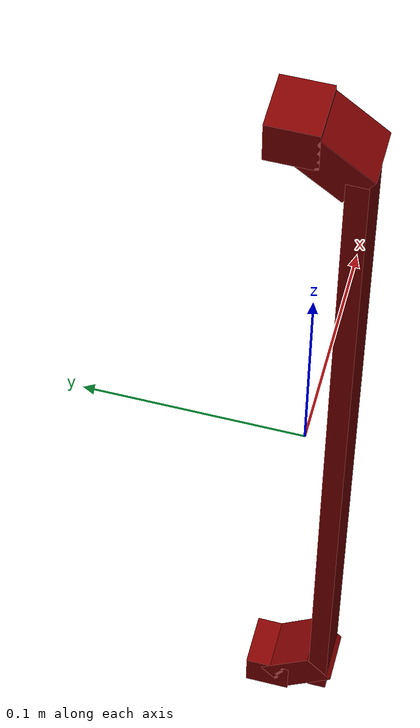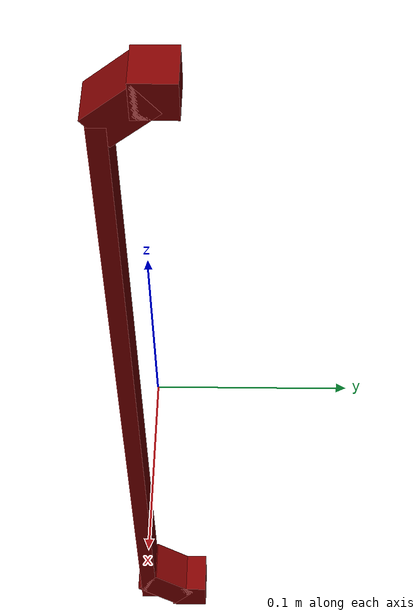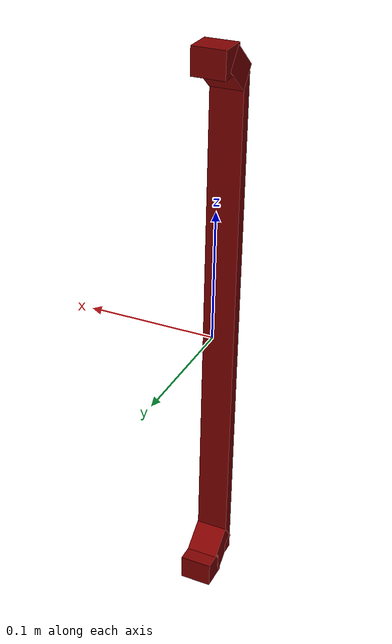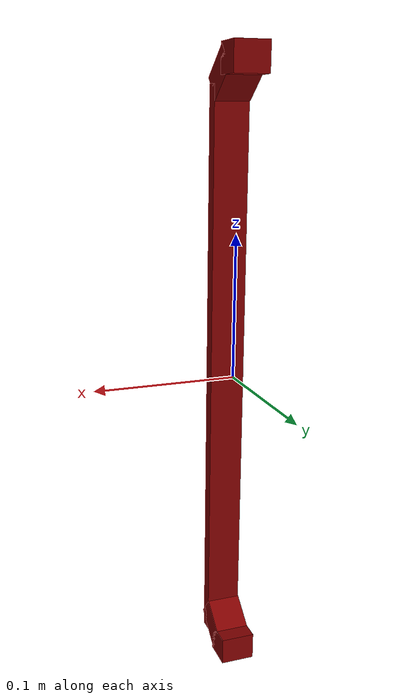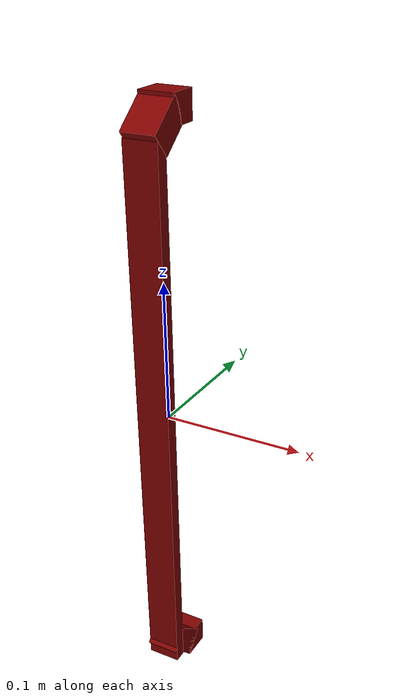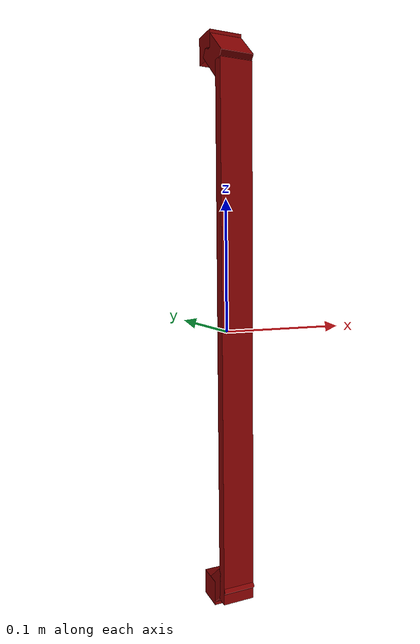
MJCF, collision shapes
<?xml version='1.0' encoding='UTF-8'?>
<mujoco model="model">
  <option timestep="0.002" gravity="0.0 0.0 -9.81"/>
  <compiler angle="radian"/>
  <asset>
    <mesh file="visuals/CabinetHandle023.obj" name="CabinetHandle023_vis"/>
    <texture file="visuals/T_BC001.png" name="tex" type="2d"/>
    <material name="mat" rgba="1 1 1 1.0" texture="tex" shininess="0.4472135901451111" specular="0.3103448502657381"/>
  </asset>
  <default>
    <default class="visual">
      <geom conaffinity="0" contype="0" group="1" type="mesh"/>
    </default>
    <default class="collision">
      <geom group="0" rgba="0.5 0 0 0.5" density="1.0" solref="0.004 1" solimp="0.998 0.998 0.001"/>
    </default>
    <default class="spawn">
      <geom group="0" rgba="1 1 1 0.5" contype="0" conaffinity="0"/>
      <site group="0" rgba="1 1 1 0.5"/>
    </default>
    <default class="region">
      <geom group="1" conaffinity="0" contype="0" rgba="0 1 0 0" mass="0"/>
    </default>
  </default>
  <worldbody>
    <body>
      <body name="object">
        <geom mesh="CabinetHandle023_vis" type="mesh" solimp="0.998 0.998 0.001" solref="0.001 1" friction="0.95 0.3 0.1" class="visual" material="mat"/>
        <geom type="box" pos="0.0 -0.015879454091191292 -0.0069800675846636295" size="0.012293832376599312 0.004582408349961042 0.20240648090839386" quat="1.0 0.0 0.0 0.0" class="collision"/>
        <geom type="box" pos="0.0 -0.005015884526073933 0.20140588283538818" size="0.012293831445276737 0.015019620768725872 0.009614109992980957" quat="0.9414644837379456 0.33711227774620056 0.0 0.0" class="collision"/>
        <geom type="box" pos="0.0 0.009430784732103348 0.20957331359386444" size="0.012293831445276737 0.010723741725087166 0.00986376404762268" quat="1.0 0.0 0.0 0.0" class="collision"/>
        <geom type="box" pos="0.0 0.009430784732103348 -0.2095780372619629" size="0.012293831445276737 0.010723741725087166 0.00986376404762268" quat="1.0 0.0 0.0 0.0" class="collision"/>
        <geom type="box" pos="0.0 -0.005015884526073933 -0.20141060650348663" size="0.012293831445276737 0.015019622631371021 0.009614109992980957" quat="0.9414644241333008 -0.33711230754852295 -0.0 0.0" class="collision"/>
        <geom class="region" name="reg_main" type="box" pos="2.3283064365386963e-10 0.0 0.0" size="0.013293829582631589 0.021154578611254693 0.22046680545806885"/>
      </body>
    </body>
  </worldbody>
  <actuator/>
</mujoco>
